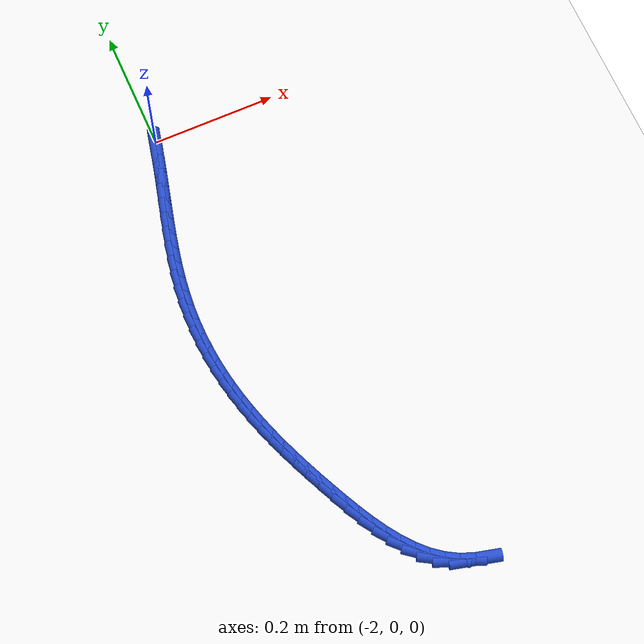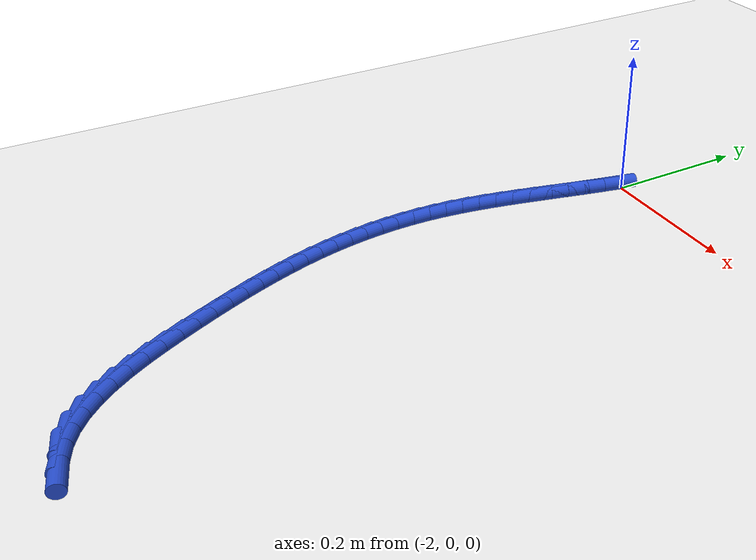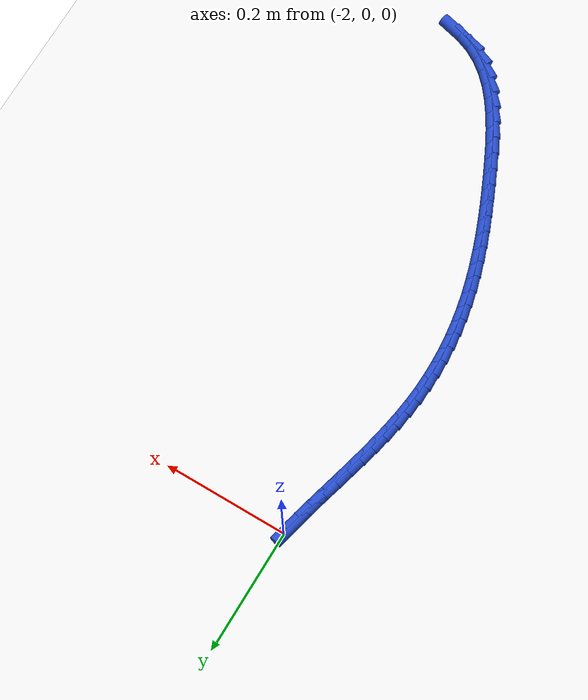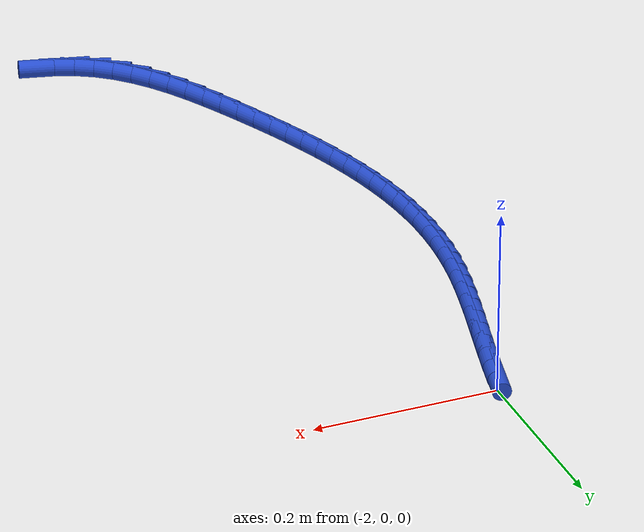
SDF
<sdf version="1.6">
 <world name="default">
  <model name="ground_plane">
   <static>1</static>
   <link name="link">
    <collision name="collision">
     <geometry><plane><normal>0 0 1</normal><size>100 100</size></plane></geometry>
     <surface><friction><ode><mu>100</mu><mu2>50</mu2></ode></friction></surface>
    </collision>
    <visual name="visual">
     <cast_shadows>0</cast_shadows>
     <geometry><plane><normal>0 0 1</normal><size>100 100</size></plane></geometry>
     <material>
      <script><uri>file://media/materials/scripts/gazebo.material</uri><name>Gazebo/WhiteGlow</name></script>
     </material>
    </visual>
   </link>
  </model>
  <model name="line">
   <link name="link_146">
    <pose>-2.0056179413249184 -0.01962660410287137 0.01 0 1.57 1.3412248454569293</pose>
    <collision name="collision">
     <geometry><cylinder><radius>0.01</radius><length>0.08</length></cylinder></geometry>
    </collision>
    <visual name="visual">
     <material>
      <script><name>Gazebo/Blue</name><uri>file://media/materials/scripts/gazebo.material</uri></script>
     </material>
     <geometry><cylinder><radius>0.01</radius><length>0.08</length></cylinder></geometry>
    </visual>
   </link>
   <link name="link_147">
    <pose>-2.0112123040557055 -0.043565708493484075 0.01 0 1.57 1.3274081494011016</pose>
    <collision name="collision">
     <geometry><cylinder><radius>0.01</radius><length>0.08</length></cylinder></geometry>
    </collision>
    <visual name="visual">
     <material>
      <script><name>Gazebo/Blue</name><uri>file://media/materials/scripts/gazebo.material</uri></script>
     </material>
     <geometry><cylinder><radius>0.01</radius><length>0.08</length></cylinder></geometry>
    </visual>
   </link>
   <link name="link_148">
    <pose>-2.0171594737432272 -0.06751621804352566 0.01 0 1.57 1.319824380137614</pose>
    <collision name="collision">
     <geometry><cylinder><radius>0.01</radius><length>0.08</length></cylinder></geometry>
    </collision>
    <visual name="visual">
     <material>
      <script><name>Gazebo/Blue</name><uri>file://media/materials/scripts/gazebo.material</uri></script>
     </material>
     <geometry><cylinder><radius>0.01</radius><length>0.08</length></cylinder></geometry>
    </visual>
   </link>
   <link name="link_149">
    <pose>-2.023303689915516 -0.09148172311578026 0.01 0 1.57 1.3183961006144649</pose>
    <collision name="collision">
     <geometry><cylinder><radius>0.01</radius><length>0.08</length></cylinder></geometry>
    </collision>
    <visual name="visual">
     <material>
      <script><name>Gazebo/Blue</name><uri>file://media/materials/scripts/gazebo.material</uri></script>
     </material>
     <geometry><cylinder><radius>0.01</radius><length>0.08</length></cylinder></geometry>
    </visual>
   </link>
   <link name="link_150">
    <pose>-2.029489192100602 -0.115465814073032 0.01 0 1.57 1.3230962764443936</pose>
    <collision name="collision">
     <geometry><cylinder><radius>0.01</radius><length>0.08</length></cylinder></geometry>
    </collision>
    <visual name="visual">
     <material>
      <script><name>Gazebo/Blue</name><uri>file://media/materials/scripts/gazebo.material</uri></script>
     </material>
     <geometry><cylinder><radius>0.01</radius><length>0.08</length></cylinder></geometry>
    </visual>
   </link>
   <link name="link_151">
    <pose>-2.035560219826516 -0.13947208127806493 0.01 0 1.57 1.333949254800438</pose>
    <collision name="collision">
     <geometry><cylinder><radius>0.01</radius><length>0.08</length></cylinder></geometry>
    </collision>
    <visual name="visual">
     <material>
      <script><name>Gazebo/Blue</name><uri>file://media/materials/scripts/gazebo.material</uri></script>
     </material>
     <geometry><cylinder><radius>0.01</radius><length>0.08</length></cylinder></geometry>
    </visual>
   </link>
   <link name="link_152">
    <pose>-2.041361012621289 -0.16350411509366247 0.01 0 1.57 1.3510257860272348</pose>
    <collision name="collision">
     <geometry><cylinder><radius>0.01</radius><length>0.08</length></cylinder></geometry>
    </collision>
    <visual name="visual">
     <material>
      <script><name>Gazebo/Blue</name><uri>file://media/materials/scripts/gazebo.material</uri></script>
     </material>
     <geometry><cylinder><radius>0.01</radius><length>0.08</length></cylinder></geometry>
    </visual>
   </link>
   <link name="link_153">
    <pose>-2.046735810012952 -0.18756550588261023 0.01 0 1.57 1.3744316277005442</pose>
    <collision name="collision">
     <geometry><cylinder><radius>0.01</radius><length>0.08</length></cylinder></geometry>
    </collision>
    <visual name="visual">
     <material>
      <script><name>Gazebo/Blue</name><uri>file://media/materials/scripts/gazebo.material</uri></script>
     </material>
     <geometry><cylinder><radius>0.01</radius><length>0.08</length></cylinder></geometry>
    </visual>
   </link>
   <link name="link_154">
    <pose>-2.0515288515295365 -0.2116598440076917 0.01 0 1.57 1.404288646366875</pose>
    <collision name="collision">
     <geometry><cylinder><radius>0.01</radius><length>0.08</length></cylinder></geometry>
    </collision>
    <visual name="visual">
     <material>
      <script><name>Gazebo/Blue</name><uri>file://media/materials/scripts/gazebo.material</uri></script>
     </material>
     <geometry><cylinder><radius>0.01</radius><length>0.08</length></cylinder></geometry>
    </visual>
   </link>
   <link name="link_155">
    <pose>-2.0555843766990725 -0.23579071983169073 0.01 0 1.57 1.4407069967099049</pose>
    <collision name="collision">
     <geometry><cylinder><radius>0.01</radius><length>0.08</length></cylinder></geometry>
    </collision>
    <visual name="visual">
     <material>
      <script><name>Gazebo/Blue</name><uri>file://media/materials/scripts/gazebo.material</uri></script>
     </material>
     <geometry><cylinder><radius>0.01</radius><length>0.08</length></cylinder></geometry>
    </visual>
   </link>
   <link name="link_156">
    <pose>-2.058746625049591 -0.25996172371739157 0.01 0 1.57 1.4836723651488943</pose>
    <collision name="collision">
     <geometry><cylinder><radius>0.01</radius><length>0.08</length></cylinder></geometry>
    </collision>
    <visual name="visual">
     <material>
      <script><name>Gazebo/Blue</name><uri>file://media/materials/scripts/gazebo.material</uri></script>
     </material>
     <geometry><cylinder><radius>0.01</radius><length>0.08</length></cylinder></geometry>
    </visual>
   </link>
   <link name="link_157">
    <pose>-2.0608615967647244 -0.28417570199287545 0.01 0 1.57 1.5299736087139535</pose>
    <collision name="collision">
     <geometry><cylinder><radius>0.01</radius><length>0.08</length></cylinder></geometry>
    </collision>
    <visual name="visual">
     <material>
      <script><name>Gazebo/Blue</name><uri>file://media/materials/scripts/gazebo.material</uri></script>
     </material>
     <geometry><cylinder><radius>0.01</radius><length>0.08</length></cylinder></geometry>
    </visual>
   </link>
   <link name="link_158">
    <pose>-2.0618511881732027 -0.30840342806646304 0.01 0 1.57 -1.566213568979079</pose>
    <collision name="collision">
     <geometry><cylinder><radius>0.01</radius><length>0.08</length></cylinder></geometry>
    </collision>
    <visual name="visual">
     <material>
      <script><name>Gazebo/Blue</name><uri>file://media/materials/scripts/gazebo.material</uri></script>
     </material>
     <geometry><cylinder><radius>0.01</radius><length>0.08</length></cylinder></geometry>
    </visual>
   </link>
   <link name="link_159">
    <pose>-2.0617404282617136 -0.33257209256030557 0.01 0 1.57 -1.5217913668026335</pose>
    <collision name="collision">
     <geometry><cylinder><radius>0.01</radius><length>0.08</length></cylinder></geometry>
    </collision>
    <visual name="visual">
     <material>
      <script><name>Gazebo/Blue</name><uri>file://media/materials/scripts/gazebo.material</uri></script>
     </material>
     <geometry><cylinder><radius>0.01</radius><length>0.08</length></cylinder></geometry>
    </visual>
   </link>
   <link name="link_160">
    <pose>-2.060561715055888 -0.35660577201751154 0.01 0 1.57 -1.4781150518363821</pose>
    <collision name="collision">
     <geometry><cylinder><radius>0.01</radius><length>0.08</length></cylinder></geometry>
    </collision>
    <visual name="visual">
     <material>
      <script><name>Gazebo/Blue</name><uri>file://media/materials/scripts/gazebo.material</uri></script>
     </material>
     <geometry><cylinder><radius>0.01</radius><length>0.08</length></cylinder></geometry>
    </visual>
   </link>
   <link name="link_161">
    <pose>-2.0583474465813585 -0.38042854298118967 0.01 0 1.57 -1.4350357094484585</pose>
    <collision name="collision">
     <geometry><cylinder><radius>0.01</radius><length>0.08</length></cylinder></geometry>
    </collision>
    <visual name="visual">
     <material>
      <script><name>Gazebo/Blue</name><uri>file://media/materials/scripts/gazebo.material</uri></script>
     </material>
     <geometry><cylinder><radius>0.01</radius><length>0.08</length></cylinder></geometry>
    </visual>
   </link>
   <link name="link_162">
    <pose>-2.0551312611975443 -0.40397294055963445 0.01 0 1.57 -1.3933501693456816</pose>
    <collision name="collision">
     <geometry><cylinder><radius>0.01</radius><length>0.08</length></cylinder></geometry>
    </collision>
    <visual name="visual">
     <material>
      <script><name>Gazebo/Blue</name><uri>file://media/materials/scripts/gazebo.material</uri></script>
     </material>
     <geometry><cylinder><radius>0.01</radius><length>0.08</length></cylinder></geometry>
    </visual>
   </link>
   <link name="link_163">
    <pose>-2.0509576889780194 -0.42724577686235143 0.01 0 1.57 -1.3538104526840173</pose>
    <collision name="collision">
     <geometry><cylinder><radius>0.01</radius><length>0.08</length></cylinder></geometry>
    </collision>
    <visual name="visual">
     <material>
      <script><name>Gazebo/Blue</name><uri>file://media/materials/scripts/gazebo.material</uri></script>
     </material>
     <geometry><cylinder><radius>0.01</radius><length>0.08</length></cylinder></geometry>
    </visual>
   </link>
   <link name="link_164">
    <pose>-2.045876909117965 -0.4502923886797343 0.01 0 1.57 -1.316731951529727</pose>
    <collision name="collision">
     <geometry><cylinder><radius>0.01</radius><length>0.08</length></cylinder></geometry>
    </collision>
    <visual name="visual">
     <material>
      <script><name>Gazebo/Blue</name><uri>file://media/materials/scripts/gazebo.material</uri></script>
     </material>
     <geometry><cylinder><radius>0.01</radius><length>0.08</length></cylinder></geometry>
    </visual>
   </link>
   <link name="link_165">
    <pose>-2.039939148738462 -0.4731584396370672 0.01 0 1.57 -1.2823625013611348</pose>
    <collision name="collision">
     <geometry><cylinder><radius>0.01</radius><length>0.08</length></cylinder></geometry>
    </collision>
    <visual name="visual">
     <material>
      <script><name>Gazebo/Blue</name><uri>file://media/materials/scripts/gazebo.material</uri></script>
     </material>
     <geometry><cylinder><radius>0.01</radius><length>0.08</length></cylinder></geometry>
    </visual>
   </link>
   <link name="link_166">
    <pose>-2.0331946349605903 -0.49588959335963445 0.01 0 1.57 -1.250885964348743</pose>
    <collision name="collision">
     <geometry><cylinder><radius>0.01</radius><length>0.08</length></cylinder></geometry>
    </collision>
    <visual name="visual">
     <material>
      <script><name>Gazebo/Blue</name><uri>file://media/materials/scripts/gazebo.material</uri></script>
     </material>
     <geometry><cylinder><radius>0.01</radius><length>0.08</length></cylinder></geometry>
    </visual>
   </link>
   <link name="link_167">
    <pose>-2.0256935949054315 -0.5185315134727206 0.01 0 1.57 -1.2224256952686787</pose>
    <collision name="collision">
     <geometry><cylinder><radius>0.01</radius><length>0.08</length></cylinder></geometry>
    </collision>
    <visual name="visual">
     <material>
      <script><name>Gazebo/Blue</name><uri>file://media/materials/scripts/gazebo.material</uri></script>
     </material>
     <geometry><cylinder><radius>0.01</radius><length>0.08</length></cylinder></geometry>
    </visual>
   </link>
   <link name="link_168">
    <pose>-2.0174862556940654 -0.54112986360161 0.01 0 1.57 -1.1970506344749317</pose>
    <collision name="collision">
     <geometry><cylinder><radius>0.01</radius><length>0.08</length></cylinder></geometry>
    </collision>
    <visual name="visual">
     <material>
      <script><name>Gazebo/Blue</name><uri>file://media/materials/scripts/gazebo.material</uri></script>
     </material>
     <geometry><cylinder><radius>0.01</radius><length>0.08</length></cylinder></geometry>
    </visual>
   </link>
   <link name="link_169">
    <pose>-2.008622844447573 -0.5637303073715858 0.01 0 1.57 -1.1747828994557878</pose>
    <collision name="collision">
     <geometry><cylinder><radius>0.01</radius><length>0.08</length></cylinder></geometry>
    </collision>
    <visual name="visual">
     <material>
      <script><name>Gazebo/Blue</name><uri>file://media/materials/scripts/gazebo.material</uri></script>
     </material>
     <geometry><cylinder><radius>0.01</radius><length>0.08</length></cylinder></geometry>
    </visual>
   </link>
   <link name="link_170">
    <pose>-1.9991535882870355 -0.5863785084079343 0.01 0 1.57 -1.1556058961156566</pose>
    <collision name="collision">
     <geometry><cylinder><radius>0.01</radius><length>0.08</length></cylinder></geometry>
    </collision>
    <visual name="visual">
     <material>
      <script><name>Gazebo/Blue</name><uri>file://media/materials/scripts/gazebo.material</uri></script>
     </material>
     <geometry><cylinder><radius>0.01</radius><length>0.08</length></cylinder></geometry>
    </visual>
   </link>
   <link name="link_171">
    <pose>-1.9891287143335337 -0.609120130335939 0.01 0 1.57 -1.1394722035843956</pose>
    <collision name="collision">
     <geometry><cylinder><radius>0.01</radius><length>0.08</length></cylinder></geometry>
    </collision>
    <visual name="visual">
     <material>
      <script><name>Gazebo/Blue</name><uri>file://media/materials/scripts/gazebo.material</uri></script>
     </material>
     <geometry><cylinder><radius>0.01</radius><length>0.08</length></cylinder></geometry>
    </visual>
   </link>
   <link name="link_172">
    <pose>-1.9785984497081475 -0.632000836780884 0.01 0 1.57 -1.1259826637980905</pose>
    <collision name="collision">
     <geometry><cylinder><radius>0.01</radius><length>0.08</length></cylinder></geometry>
    </collision>
    <visual name="visual">
     <material>
      <script><name>Gazebo/Blue</name><uri>file://media/materials/scripts/gazebo.material</uri></script>
     </material>
     <geometry><cylinder><radius>0.01</radius><length>0.08</length></cylinder></geometry>
    </visual>
   </link>
   <link name="link_173">
    <pose>-1.9676083446311243 -0.6550566240644448 0.01 0 1.57 -1.1075773173753403</pose>
    <collision name="collision">
     <geometry><cylinder><radius>0.01</radius><length>0.08</length></cylinder></geometry>
    </collision>
    <visual name="visual">
     <material>
      <script><name>Gazebo/Blue</name><uri>file://media/materials/scripts/gazebo.material</uri></script>
     </material>
     <geometry><cylinder><radius>0.01</radius><length>0.08</length></cylinder></geometry>
    </visual>
   </link>
   <link name="link_174">
    <pose>-1.9560973888851025 -0.678103224675555 0.01 0 1.57 -1.0764692737956283</pose>
    <collision name="collision">
     <geometry><cylinder><radius>0.01</radius><length>0.08</length></cylinder></geometry>
    </collision>
    <visual name="visual">
     <material>
      <script><name>Gazebo/Blue</name><uri>file://media/materials/scripts/gazebo.material</uri></script>
     </material>
     <geometry><cylinder><radius>0.01</radius><length>0.08</length></cylinder></geometry>
    </visual>
   </link>
   <link name="link_175">
    <pose>-1.9438985689796506 -0.7007372589473271 0.01 0 1.57 -1.0312852095013278</pose>
    <collision name="collision">
     <geometry><cylinder><radius>0.01</radius><length>0.08</length></cylinder></geometry>
    </collision>
    <visual name="visual">
     <material>
      <script><name>Gazebo/Blue</name><uri>file://media/materials/scripts/gazebo.material</uri></script>
     </material>
     <geometry><cylinder><radius>0.01</radius><length>0.08</length></cylinder></geometry>
    </visual>
   </link>
   <link name="link_176">
    <pose>-1.9308403059573693 -0.7225459102466323 0.01 0 1.57 -0.9702573587923207</pose>
    <collision name="collision">
     <geometry><cylinder><radius>0.01</radius><length>0.08</length></cylinder></geometry>
    </collision>
    <visual name="visual">
     <material>
      <script><name>Gazebo/Blue</name><uri>file://media/materials/scripts/gazebo.material</uri></script>
     </material>
     <geometry><cylinder><radius>0.01</radius><length>0.08</length></cylinder></geometry>
    </visual>
   </link>
   <link name="link_177">
    <pose>-1.916751020860861 -0.7431163619403423 0.01 0 1.57 -0.8910370322142785</pose>
    <collision name="collision">
     <geometry><cylinder><radius>0.01</radius><length>0.08</length></cylinder></geometry>
    </collision>
    <visual name="visual">
     <material>
      <script><name>Gazebo/Blue</name><uri>file://media/materials/scripts/gazebo.material</uri></script>
     </material>
     <geometry><cylinder><radius>0.01</radius><length>0.08</length></cylinder></geometry>
    </visual>
   </link>
   <link name="link_178">
    <pose>-1.9014591347327277 -0.7620357973953285 0.01 0 1.57 -0.7910522508452362</pose>
    <collision name="collision">
     <geometry><cylinder><radius>0.01</radius><length>0.08</length></cylinder></geometry>
    </collision>
    <visual name="visual">
     <material>
      <script><name>Gazebo/Blue</name><uri>file://media/materials/scripts/gazebo.material</uri></script>
     </material>
     <geometry><cylinder><radius>0.01</radius><length>0.08</length></cylinder></geometry>
    </visual>
   </link>
   <link name="link_179">
    <pose>-1.8847930686155705 -0.7788913999784622 0.01 0 1.57 -0.6683298891316236</pose>
    <collision name="collision">
     <geometry><cylinder><radius>0.01</radius><length>0.08</length></cylinder></geometry>
    </collision>
    <visual name="visual">
     <material>
      <script><name>Gazebo/Blue</name><uri>file://media/materials/scripts/gazebo.material</uri></script>
     </material>
     <geometry><cylinder><radius>0.01</radius><length>0.08</length></cylinder></geometry>
    </visual>
   </link>
   <link name="link_180">
    <pose>-1.8665812435519915 -0.7932703530566152 0.01 0 1.57 -0.5229730594265558</pose>
    <collision name="collision">
     <geometry><cylinder><radius>0.01</radius><length>0.08</length></cylinder></geometry>
    </collision>
    <visual name="visual">
     <material>
      <script><name>Gazebo/Blue</name><uri>file://media/materials/scripts/gazebo.material</uri></script>
     </material>
     <geometry><cylinder><radius>0.01</radius><length>0.08</length></cylinder></geometry>
    </visual>
   </link>
   <link name="link_181">
    <pose>-1.846652080584592 -0.8047598399966586 0.01 0 1.57 -0.366306475815608</pose>
    <collision name="collision">
     <geometry><cylinder><radius>0.01</radius><length>0.08</length></cylinder></geometry>
    </collision>
    <visual name="visual">
     <material>
      <script><name>Gazebo/Blue</name><uri>file://media/materials/scripts/gazebo.material</uri></script>
     </material>
     <geometry><cylinder><radius>0.01</radius><length>0.08</length></cylinder></geometry>
    </visual>
   </link>
   <link name="link_182">
    <pose>-1.8249133240670021 -0.8130992628808057 0.01 0 1.57 -0.2461930450425224</pose>
    <collision name="collision">
     <geometry><cylinder><radius>0.01</radius><length>0.08</length></cylinder></geometry>
    </collision>
    <visual name="visual">
     <material>
      <script><name>Gazebo/Blue</name><uri>file://media/materials/scripts/gazebo.material</uri></script>
     </material>
     <geometry><cylinder><radius>0.01</radius><length>0.08</length></cylinder></geometry>
    </visual>
   </link>
  </model>
 </world>
</sdf>
